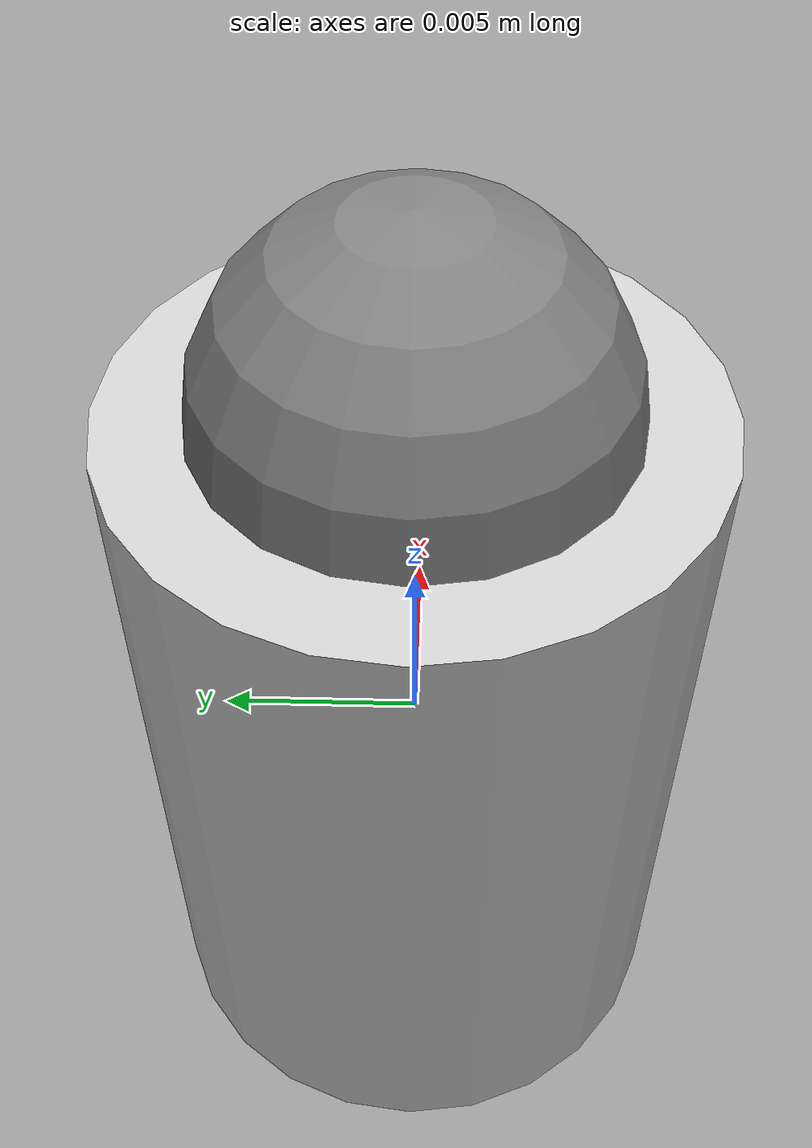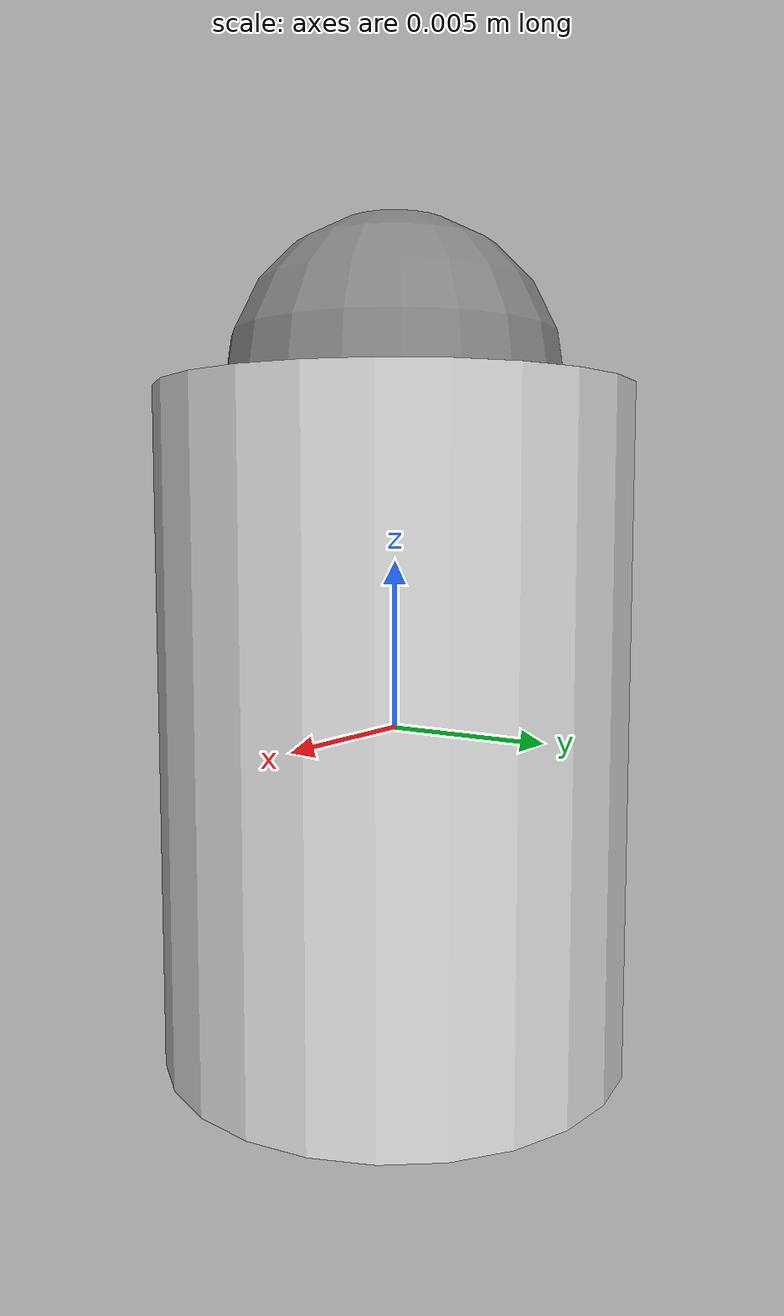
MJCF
<mujoco model="payload_scene">
  <compiler autolimits="true"/>
  <extension>
    <plugin plugin="mujoco.elasticity.cable"/>
  </extension>

  <option integrator="implicit" />

  <worldbody>

    <!-- rotate rope facing upwards -->
    <body name="payload">
      <freejoint/>
      <geom type="cylinder" mass="0.001" size=".007 0.01" rgba="0.8 0.8 0.8 1" pos="0 0 0"/>
      <site name="payload_s" pos="0 0 0.01"/>
    </body>

    </worldbody>

   <contact>
    <exclude body1="payload" body2="rope_B_last"/>
  </contact>
  <equality>
    <!-- very strong weld -->
    <connect site2="payload_s" site1="rope_S_last" />
  </equality>
  <contact>
      <exclude body1="payload" body2="rope_B_last"/>
  </contact>
</mujoco>
